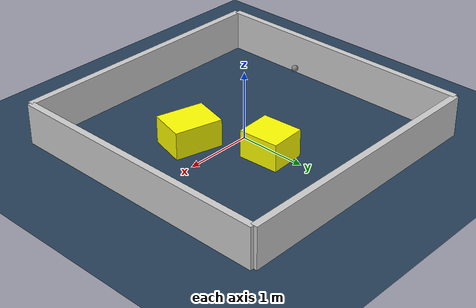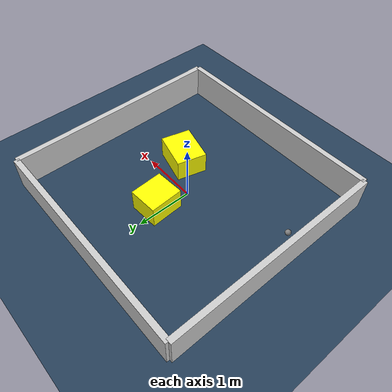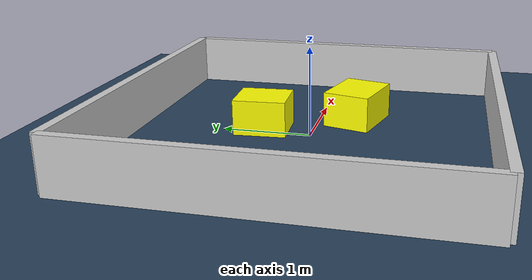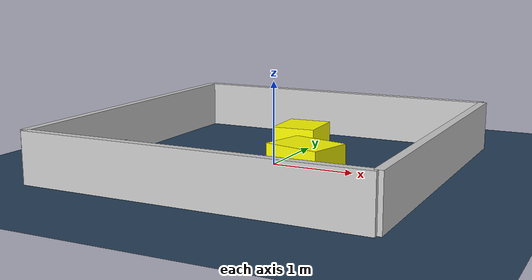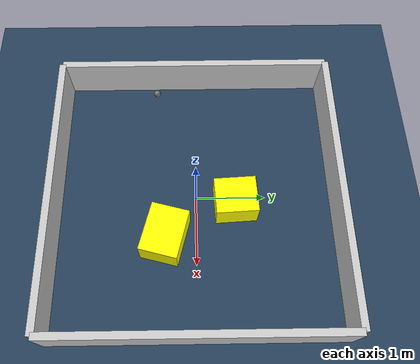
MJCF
<?xml version="1.0" ?>
<mujoco model="generated_environment">
  <option timestep="0.01" integrator="RK4" cone="elliptic"/>
  <default>
    <geom density="1"/>
  </default>
  <asset>
    <texture builtin="gradient" height="3072" rgb1="0.3 0.5 0.7" rgb2="0 0 0" type="skybox" width="512"/>
    <texture builtin="checker" height="300" mark="edge" markrgb="0.8 0.8 0.8" name="groundplane" rgb1="0.2 0.3 0.4" rgb2="0.1 0.2 0.3" type="2d" width="300"/>
    <material name="groundplane" reflectance="0.2" texrepeat="5 5" texture="groundplane" texuniform="true"/>
    <material name="robot" rgba="0.0 1.0 0.0 1"/>
  </asset>
  <worldbody>
    <light dir="0 0 -1" directional="true" pos="0 0 1.5"/>
    <geom condim="4" friction="1.0 0.005 0.001" material="groundplane" name="floor" size="0 0 0.05" type="plane"/>
    <body name="walls">
      <geom name="wall_1" condim="4" pos="-2.0 0.0 0.3" rgba="0.800000011920929 0.800000011920929 0.800000011920929 1.0" size="0.05 2.0 0.3" type="box"/>
      <geom name="wall_2" condim="4" pos="2.0 0.0 0.3" rgba="0.800000011920929 0.800000011920929 0.800000011920929 1.0" size="0.05 2.0 0.3" type="box"/>
      <geom name="wall_3" condim="4" pos="0.0 -2.0 0.3" rgba="0.800000011920929 0.800000011920929 0.800000011920929 1.0" size="2.0 0.05 0.3" type="box"/>
      <geom name="wall_4" condim="4" pos="0.0 2.0 0.3" rgba="0.800000011920929 0.800000011920929 0.800000011920929 1.0" size="2.0 0.05 0.3" type="box"/>
    </body>
    <body name="robot">
      <joint name="joint_x" type="slide" pos="0 0 0" axis="1 0 0"/>
      <joint name="joint_y" type="slide" pos="0 0 0" axis="0 1 0"/>
      <geom name="robot" type="sphere" pos="-1.7272192389280037 -0.5792222985057203 0.2" size="0.05" mass="5." friction="1.0 0.005 0.0001" condim="4"/>
      <site name="sensor_ball"/>
    </body>
    <body name="obstacle_1_movable">
      <geom name="obstacle_1_movable" condim="4" pos="0.6106941623053668 -0.43577288844627904 0.2" euler="0 0 165.02158535998822" friction="1.0 0.005 0.001" rgba="1 1 0 1" size="0.34711628861055144 0.2692373362381569 0.2" type="box" mass="0.1"/>
      <joint type="free"/>
    </body>
    <body name="obstacle_2_movable">
      <geom name="obstacle_2_movable" condim="4" pos="0.10701352430758293 0.5625953300231581 0.2" euler="0 0 183.28775698803517" friction="1.0 0.005 0.001" rgba="1 1 0 1" size="0.26150789899495 0.2959327753631168 0.2" type="box" mass="0.1"/>
      <joint type="free"/>
    </body>
  </worldbody>
  <actuator>
    <motor name="actuator_x" joint="joint_x" gear="1" ctrlrange="-1 1"/>
    <motor name="actuator_y" joint="joint_y" gear="1" ctrlrange="-1 1"/>
  </actuator>
</mujoco>
